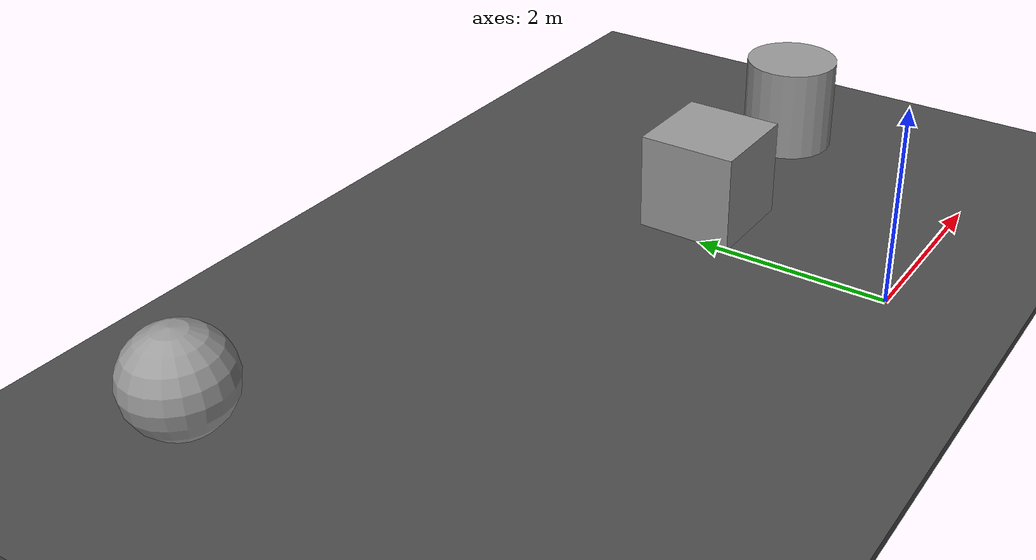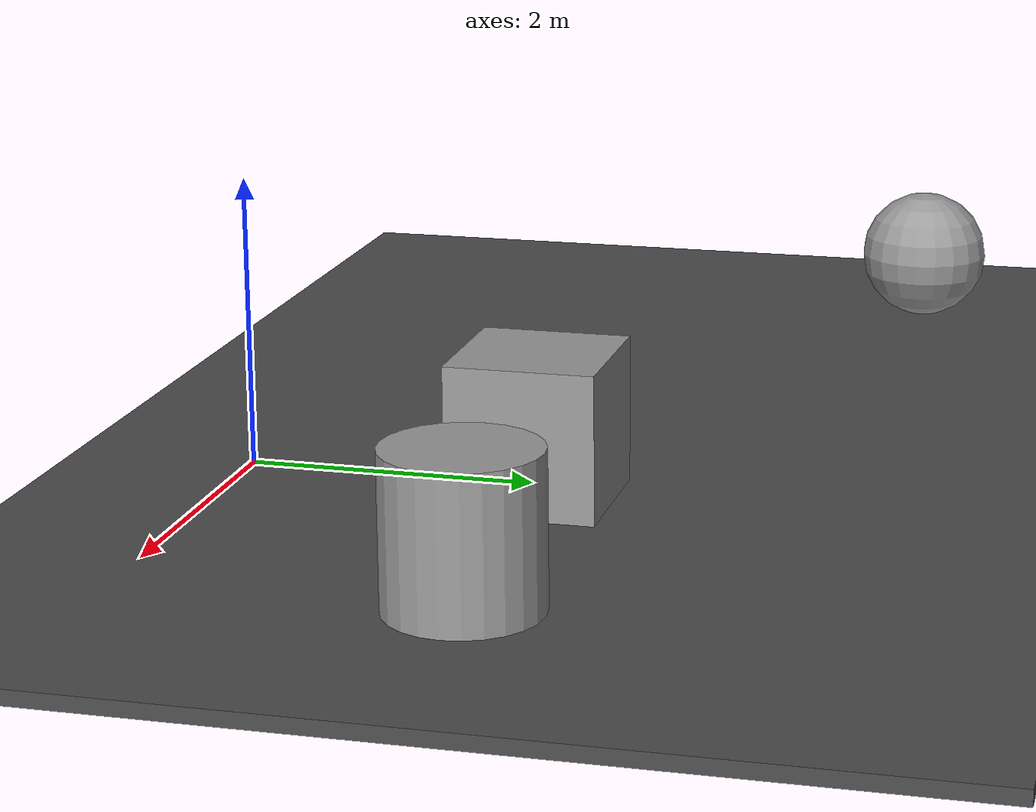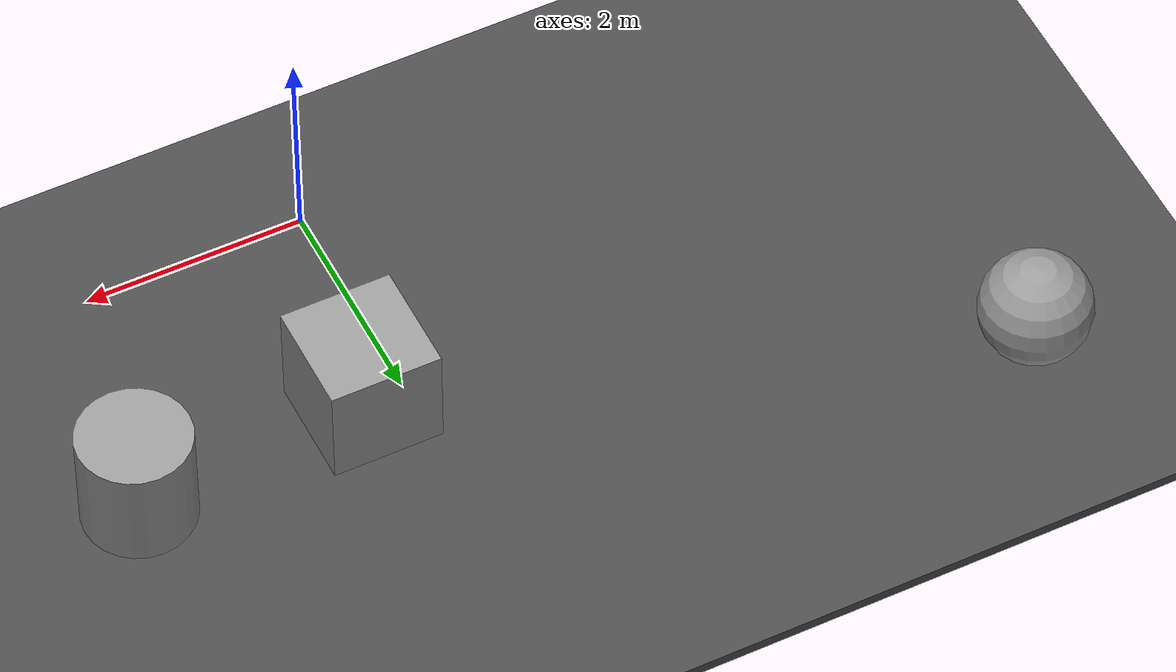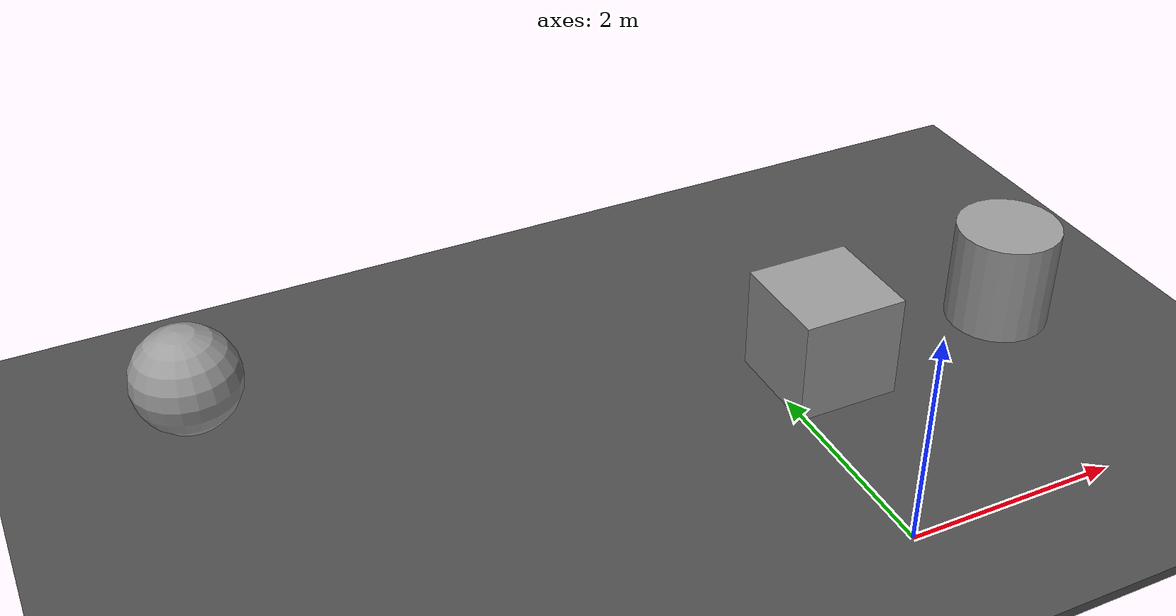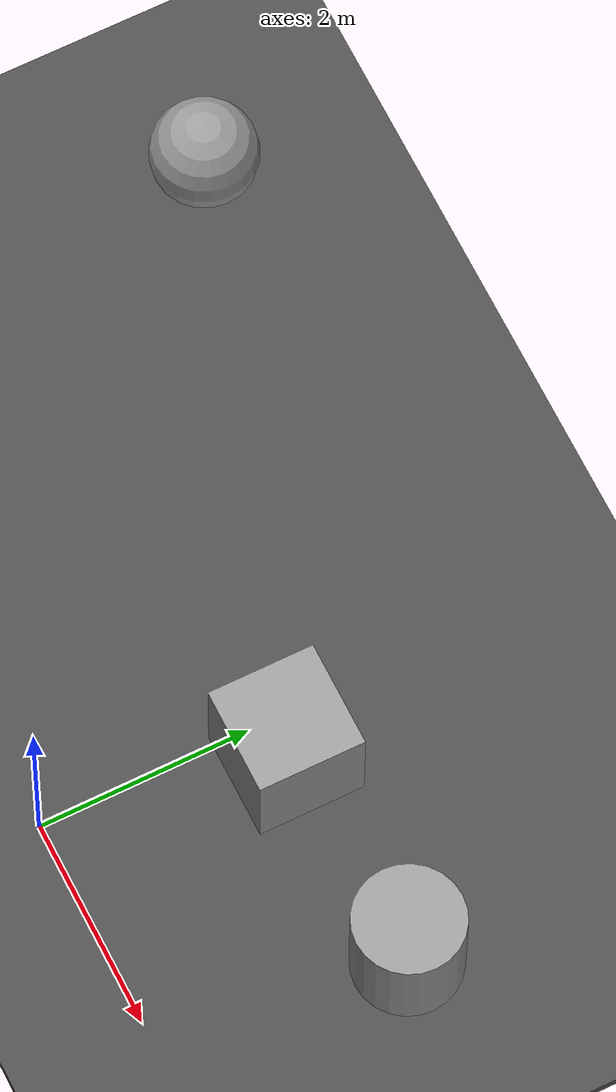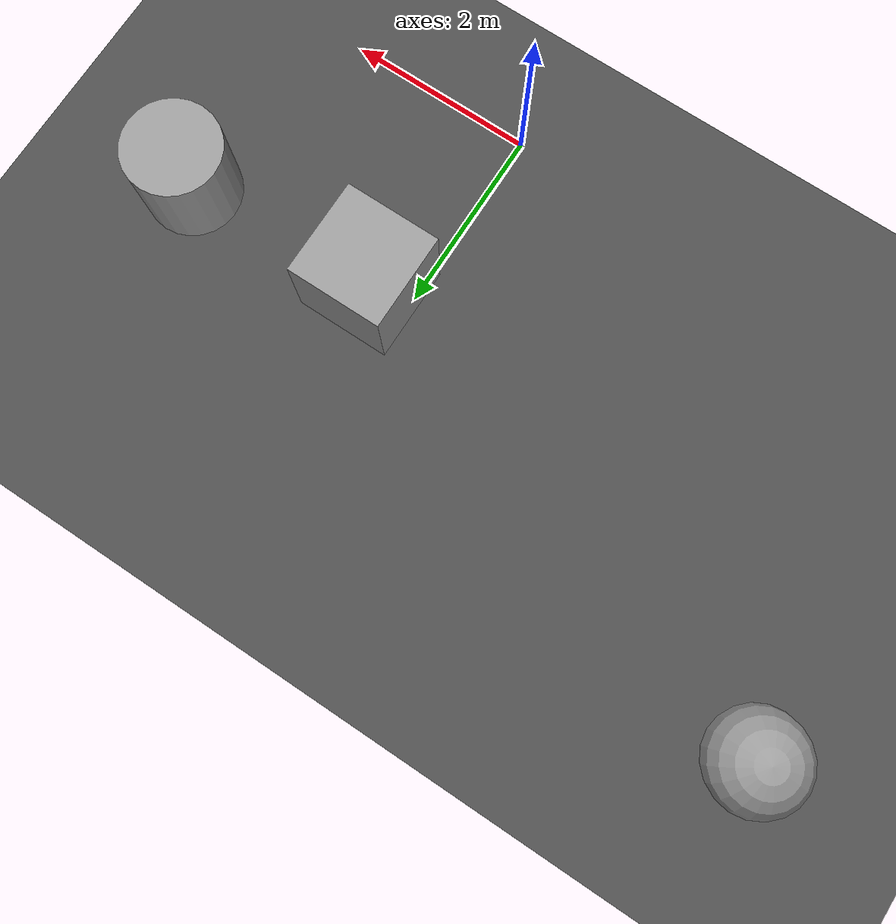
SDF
<sdf version="1.6">
 <world name="default">
  <light name="sun" type="directional">
   <pose>0 0 10 0 -0 0</pose>
   <diffuse>0.8 0.8 0.8 1</diffuse>
   <specular>0.2 0.2 0.2 1</specular>
   <attenuation>
    <range>1000</range>
    <constant>0.9</constant>
    <linear>0.01</linear>
    <quadratic>0.001</quadratic>
   </attenuation>
   <direction>-0.5 0.1 -0.9</direction>
  </light>
  <model name="ground_plane">
   <static>1</static>
   <link name="link">
    <collision name="collision">
     <geometry><plane><normal>0 0 1</normal><size>100 100</size></plane></geometry>
     <surface><friction><ode><mu>100</mu><mu2>50</mu2></ode></friction></surface>
    </collision>
    <visual name="visual">
     <cast_shadows>0</cast_shadows>
     <geometry><plane><normal>0 0 1</normal><size>100 100</size></plane></geometry>
     <material>
      <script><uri>file://media/materials/scripts/gazebo.material</uri><name>Gazebo/Grey</name></script>
     </material>
    </visual>
   </link>
  </model>
  <gravity>0 0 -9.8</gravity>
  <magnetic_field>6e-06 2.3e-05 -4.2e-05</magnetic_field>
  <atmosphere type="adiabatic"/>
  <physics name="default_physics" default="0" type="ode">
   <max_step_size>0.001</max_step_size>
   <real_time_factor>1</real_time_factor>
   <real_time_update_rate>1000</real_time_update_rate>
  </physics>
  <scene><ambient>0.4 0.4 0.4 1</ambient><background>0.7 0.7 0.7 1</background><shadows>1</shadows></scene>
  <spherical_coordinates>
   <surface_model>EARTH_WGS84</surface_model>
   <latitude_deg>0</latitude_deg>
   <longitude_deg>0</longitude_deg>
   <elevation>0</elevation>
   <heading_deg>0</heading_deg>
  </spherical_coordinates>
  <model name="asphalt_plane">
   <static>1</static>
   <link name="link">
    <collision name="collision"><geometry><box><size>200 200 0.1</size></box></geometry></collision>
    <visual name="visual">
     <cast_shadows>0</cast_shadows>
     <geometry><box><size>200 200 0.1</size></box></geometry>
     <material>
      <script>
       <uri>model://asphalt_plane/materials/scripts</uri>
       <uri>model://asphalt_plane/materials/textures</uri>
       <name>vrc/asphalt</name>
      </script>
     </material>
    </visual>
   </link>
   <pose>-3.76508 2.73464 0 0 -0 0</pose>
  </model>
  <model name="unit_box">
   <pose>0.424026 2.15455 0.55 0 -0 6e-06</pose>
   <link name="link">
    <inertial>
     <mass>1</mass>
     <inertia>
      <ixx>0.166667</ixx>
      <ixy>0</ixy>
      <ixz>0</ixz>
      <iyy>0.166667</iyy>
      <iyz>0</iyz>
      <izz>0.166667</izz>
     </inertia>
    </inertial>
    <collision name="collision"><geometry><box><size>1 1 1</size></box></geometry></collision>
    <visual name="visual">
     <geometry><box><size>1 1 1</size></box></geometry>
     <material>
      <script><name>Gazebo/Grey</name><uri>file://media/materials/scripts/gazebo.material</uri></script>
     </material>
    </visual>
   </link>
  </model>
  <model name="unit_cylinder">
   <pose>2.52424 2.26262 0.549988 -3e-06 -2e-06 3.8e-05</pose>
   <link name="link">
    <inertial>
     <mass>1</mass>
     <inertia><ixx>0.145833</ixx><ixy>0</ixy><ixz>0</ixz><iyy>0.145833</iyy><iyz>0</iyz><izz>0.125</izz></inertia>
    </inertial>
    <collision name="collision">
     <geometry><cylinder><radius>0.5</radius><length>1</length></cylinder></geometry>
    </collision>
    <visual name="visual">
     <geometry><cylinder><radius>0.5</radius><length>1</length></cylinder></geometry>
     <material>
      <script><name>Gazebo/Grey</name><uri>file://media/materials/scripts/gazebo.material</uri></script>
     </material>
    </visual>
   </link>
  </model>
  <model name="unit_sphere">
   <pose>-4.94009 4.00629 0.55 0 -0 0</pose>
   <link name="link">
    <inertial>
     <mass>1</mass>
     <inertia><ixx>0.1</ixx><ixy>0</ixy><ixz>0</ixz><iyy>0.1</iyy><iyz>0</iyz><izz>0.1</izz></inertia>
    </inertial>
    <collision name="collision"><geometry><sphere><radius>0.5</radius></sphere></geometry></collision>
    <visual name="visual">
     <geometry><sphere><radius>0.5</radius></sphere></geometry>
     <material>
      <script><name>Gazebo/Grey</name><uri>file://media/materials/scripts/gazebo.material</uri></script>
     </material>
    </visual>
   </link>
  </model>
 </world>
</sdf>
